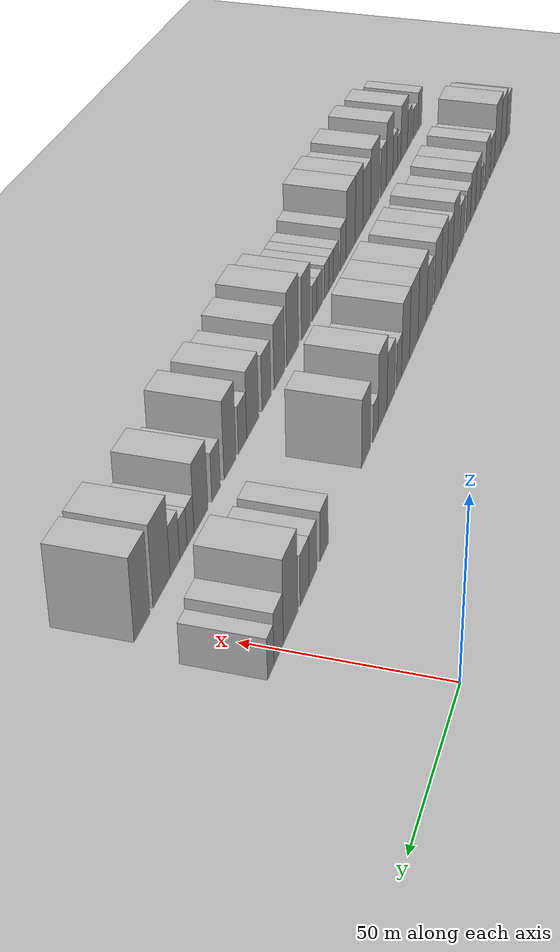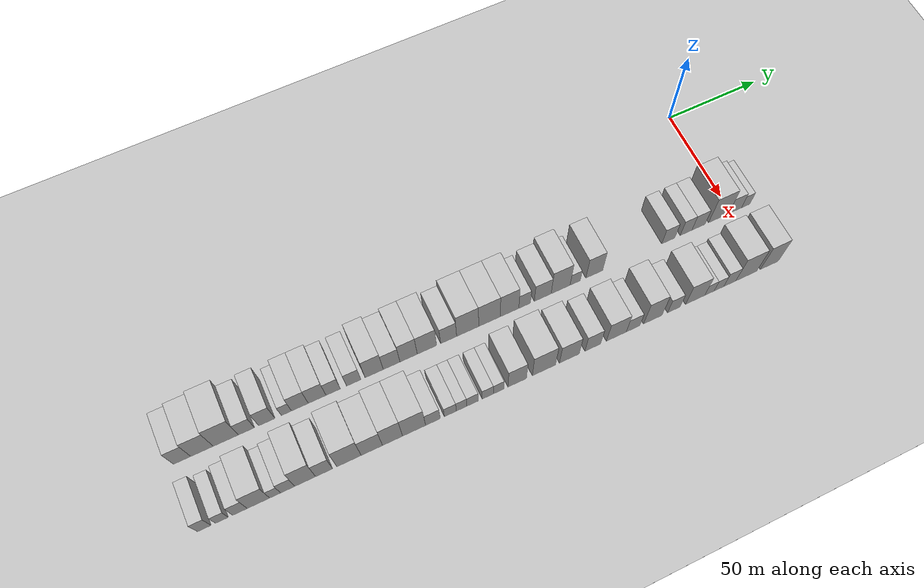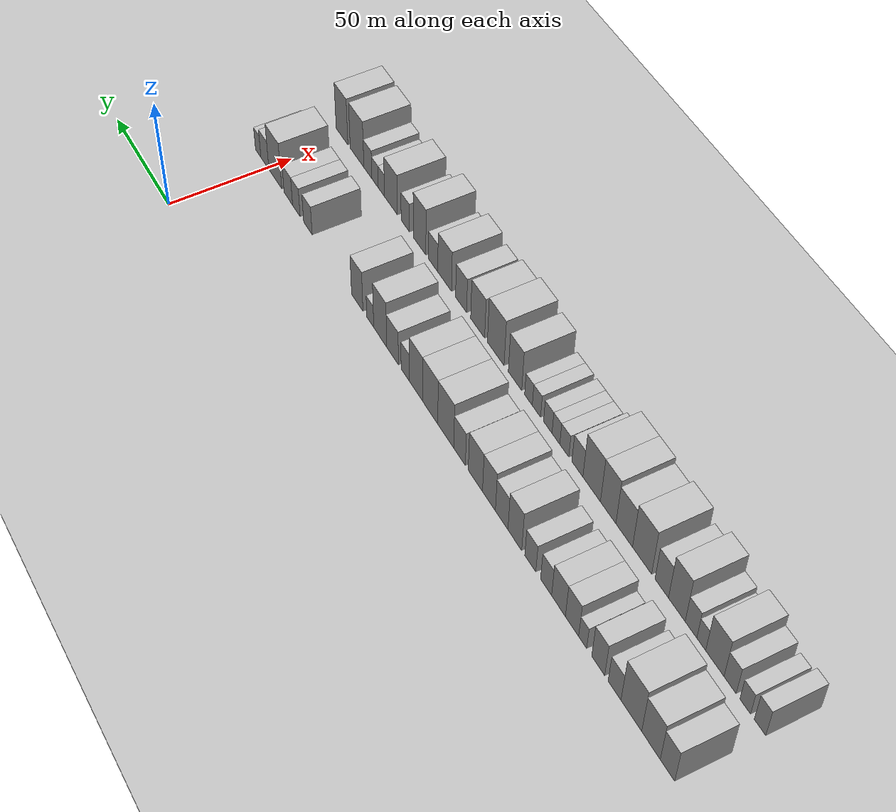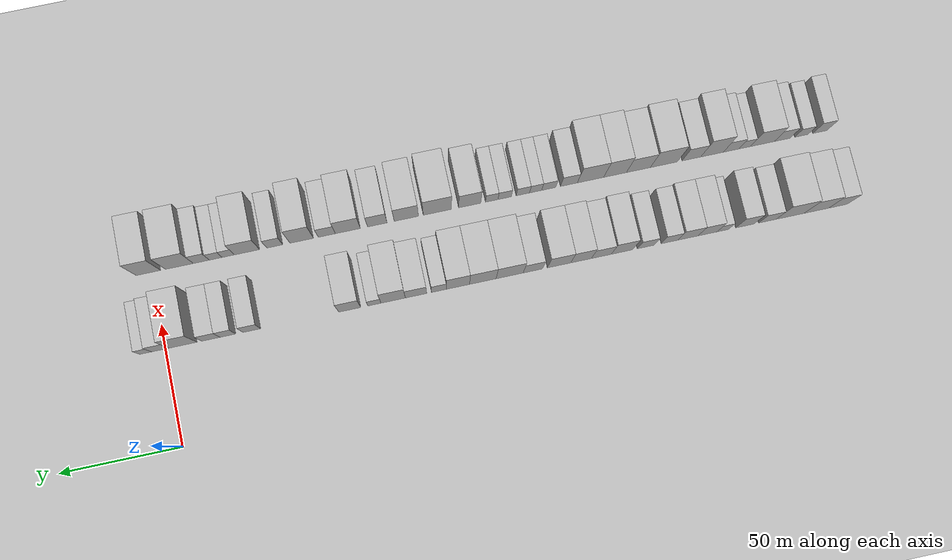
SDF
<sdf version="1.6">
 <world name="default">
  <include><name>ground_plane_1</name><uri>model://HANNAS_ground_plane</uri></include>
  <include>
   <name>ground_plane_2</name>
   <uri>model://HANNAS_ground_plane</uri>
   <pose>100 0 0  0 0 0</pose>
  </include>
  <model name="building_1">
   <static>1</static>
   <pose>50.0000 -280.0364 0 0.000000 0.000000 0.000000</pose>
   <link name="link">
    <pose>0 0 9.00 0 0 0</pose>
    <collision name="collision"><geometry><box><size>20.0000 7.9272 18.0000</size></box></geometry></collision>
    <visual name="visual">
     <cast_shadows>0</cast_shadows>
     <geometry><box><size>20.0000 7.9272 18.0000</size></box></geometry>
     <material>
      <script>
       <uri>model://HANNAS_wall/materials/scripts</uri>
       <uri>model://HANNAS_wall/materials/textures</uri>
       <name>vrc/HANNAS_wall</name>
      </script>
     </material>
    </visual>
   </link>
  </model>
  <model name="building_2">
   <static>1</static>
   <pose>50.0000 -270.8760 0 0.000000 0.000000 0.000000</pose>
   <link name="link">
    <pose>0 0 10.50 0 0 0</pose>
    <collision name="collision"><geometry><box><size>20.0000 10.3936 21.0000</size></box></geometry></collision>
    <visual name="visual">
     <cast_shadows>0</cast_shadows>
     <geometry><box><size>20.0000 10.3936 21.0000</size></box></geometry>
     <material>
      <script>
       <uri>model://HANNAS_wall/materials/scripts</uri>
       <uri>model://HANNAS_wall/materials/textures</uri>
       <name>vrc/HANNAS_wall</name>
      </script>
     </material>
    </visual>
   </link>
  </model>
  <model name="building_3">
   <static>1</static>
   <pose>50.0000 -259.7815 0 0.000000 0.000000 0.000000</pose>
   <link name="link">
    <pose>0 0 12.00 0 0 0</pose>
    <collision name="collision"><geometry><box><size>20.0000 11.7954 24.0000</size></box></geometry></collision>
    <visual name="visual">
     <cast_shadows>0</cast_shadows>
     <geometry><box><size>20.0000 11.7954 24.0000</size></box></geometry>
     <material>
      <script>
       <uri>model://HANNAS_wall/materials/scripts</uri>
       <uri>model://HANNAS_wall/materials/textures</uri>
       <name>vrc/HANNAS_wall</name>
      </script>
     </material>
    </visual>
   </link>
  </model>
  <model name="building_4">
   <static>1</static>
   <pose>50.0000 -250.1484 0 0.000000 0.000000 0.000000</pose>
   <link name="link">
    <pose>0 0 7.50 0 0 0</pose>
    <collision name="collision"><geometry><box><size>20.0000 7.4707 15.0000</size></box></geometry></collision>
    <visual name="visual">
     <cast_shadows>0</cast_shadows>
     <geometry><box><size>20.0000 7.4707 15.0000</size></box></geometry>
     <material>
      <script>
       <uri>model://HANNAS_wall/materials/scripts</uri>
       <uri>model://HANNAS_wall/materials/textures</uri>
       <name>vrc/HANNAS_wall</name>
      </script>
     </material>
    </visual>
   </link>
  </model>
  <model name="building_5">
   <static>1</static>
   <pose>50.0000 -240.5626 0 0.000000 0.000000 0.000000</pose>
   <link name="link">
    <pose>0 0 9.00 0 0 0</pose>
    <collision name="collision"><geometry><box><size>20.0000 7.7009 18.0000</size></box></geometry></collision>
    <visual name="visual">
     <cast_shadows>0</cast_shadows>
     <geometry><box><size>20.0000 7.7009 18.0000</size></box></geometry>
     <material>
      <script>
       <uri>model://HANNAS_wall/materials/scripts</uri>
       <uri>model://HANNAS_wall/materials/textures</uri>
       <name>vrc/HANNAS_wall</name>
      </script>
     </material>
    </visual>
   </link>
  </model>
  <model name="building_6">
   <static>1</static>
   <pose>50.0000 -231.2862 0 0.000000 0.000000 0.000000</pose>
   <link name="link">
    <pose>0 0 6.00 0 0 0</pose>
    <collision name="collision"><geometry><box><size>20.0000 4.8521 12.0000</size></box></geometry></collision>
    <visual name="visual">
     <cast_shadows>0</cast_shadows>
     <geometry><box><size>20.0000 4.8521 12.0000</size></box></geometry>
     <material>
      <script>
       <uri>model://HANNAS_wall/materials/scripts</uri>
       <uri>model://HANNAS_wall/materials/textures</uri>
       <name>vrc/HANNAS_wall</name>
      </script>
     </material>
    </visual>
   </link>
  </model>
  <model name="building_7">
   <static>1</static>
   <pose>50.0000 -224.8250 0 0.000000 0.000000 0.000000</pose>
   <link name="link">
    <pose>0 0 9.00 0 0 0</pose>
    <collision name="collision"><geometry><box><size>20.0000 8.0703 18.0000</size></box></geometry></collision>
    <visual name="visual">
     <cast_shadows>0</cast_shadows>
     <geometry><box><size>20.0000 8.0703 18.0000</size></box></geometry>
     <material>
      <script>
       <uri>model://HANNAS_wall/materials/scripts</uri>
       <uri>model://HANNAS_wall/materials/textures</uri>
       <name>vrc/HANNAS_wall</name>
      </script>
     </material>
    </visual>
   </link>
  </model>
  <model name="building_8">
   <static>1</static>
   <pose>50.0000 -216.5220 0 0.000000 0.000000 0.000000</pose>
   <link name="link">
    <pose>0 0 9.00 0 0 0</pose>
    <collision name="collision"><geometry><box><size>20.0000 8.5356 18.0000</size></box></geometry></collision>
    <visual name="visual">
     <cast_shadows>0</cast_shadows>
     <geometry><box><size>20.0000 8.5356 18.0000</size></box></geometry>
     <material>
      <script>
       <uri>model://HANNAS_wall/materials/scripts</uri>
       <uri>model://HANNAS_wall/materials/textures</uri>
       <name>vrc/HANNAS_wall</name>
      </script>
     </material>
    </visual>
   </link>
  </model>
  <model name="building_9">
   <static>1</static>
   <pose>50.0000 -208.7909 0 0.000000 0.000000 0.000000</pose>
   <link name="link">
    <pose>0 0 7.50 0 0 0</pose>
    <collision name="collision"><geometry><box><size>20.0000 6.9267 15.0000</size></box></geometry></collision>
    <visual name="visual">
     <cast_shadows>0</cast_shadows>
     <geometry><box><size>20.0000 6.9267 15.0000</size></box></geometry>
     <material>
      <script>
       <uri>model://HANNAS_wall/materials/scripts</uri>
       <uri>model://HANNAS_wall/materials/textures</uri>
       <name>vrc/HANNAS_wall</name>
      </script>
     </material>
    </visual>
   </link>
  </model>
  <model name="building_10">
   <static>1</static>
   <pose>50.0000 -198.7944 0 0.000000 0.000000 0.000000</pose>
   <link name="link">
    <pose>0 0 7.50 0 0 0</pose>
    <collision name="collision"><geometry><box><size>20.0000 7.0663 15.0000</size></box></geometry></collision>
    <visual name="visual">
     <cast_shadows>0</cast_shadows>
     <geometry><box><size>20.0000 7.0663 15.0000</size></box></geometry>
     <material>
      <script>
       <uri>model://HANNAS_wall/materials/scripts</uri>
       <uri>model://HANNAS_wall/materials/textures</uri>
       <name>vrc/HANNAS_wall</name>
      </script>
     </material>
    </visual>
   </link>
  </model>
  <model name="building_11">
   <static>1</static>
   <pose>50.0000 -188.7851 0 0.000000 0.000000 0.000000</pose>
   <link name="link">
    <pose>0 0 10.50 0 0 0</pose>
    <collision name="collision"><geometry><box><size>20.0000 8.9523 21.0000</size></box></geometry></collision>
    <visual name="visual">
     <cast_shadows>0</cast_shadows>
     <geometry><box><size>20.0000 8.9523 21.0000</size></box></geometry>
     <material>
      <script>
       <uri>model://HANNAS_wall/materials/scripts</uri>
       <uri>model://HANNAS_wall/materials/textures</uri>
       <name>vrc/HANNAS_wall</name>
      </script>
     </material>
    </visual>
   </link>
  </model>
  <model name="building_12">
   <static>1</static>
   <pose>50.0000 -180.1561 0 0.000000 0.000000 0.000000</pose>
   <link name="link">
    <pose>0 0 9.00 0 0 0</pose>
    <collision name="collision"><geometry><box><size>20.0000 8.3055 18.0000</size></box></geometry></collision>
    <visual name="visual">
     <cast_shadows>0</cast_shadows>
     <geometry><box><size>20.0000 8.3055 18.0000</size></box></geometry>
     <material>
      <script>
       <uri>model://HANNAS_wall/materials/scripts</uri>
       <uri>model://HANNAS_wall/materials/textures</uri>
       <name>vrc/HANNAS_wall</name>
      </script>
     </material>
    </visual>
   </link>
  </model>
  <model name="building_13">
   <static>1</static>
   <pose>50.0000 -171.6764 0 0.000000 0.000000 0.000000</pose>
   <link name="link">
    <pose>0 0 10.50 0 0 0</pose>
    <collision name="collision"><geometry><box><size>20.0000 8.6539 21.0000</size></box></geometry></collision>
    <visual name="visual">
     <cast_shadows>0</cast_shadows>
     <geometry><box><size>20.0000 8.6539 21.0000</size></box></geometry>
     <material>
      <script>
       <uri>model://HANNAS_wall/materials/scripts</uri>
       <uri>model://HANNAS_wall/materials/textures</uri>
       <name>vrc/HANNAS_wall</name>
      </script>
     </material>
    </visual>
   </link>
  </model>
  <model name="building_14">
   <static>1</static>
   <pose>50.0000 -162.4909 0 0.000000 0.000000 0.000000</pose>
   <link name="link">
    <pose>0 0 10.50 0 0 0</pose>
    <collision name="collision"><geometry><box><size>20.0000 9.7172 21.0000</size></box></geometry></collision>
    <visual name="visual">
     <cast_shadows>0</cast_shadows>
     <geometry><box><size>20.0000 9.7172 21.0000</size></box></geometry>
     <material>
      <script>
       <uri>model://HANNAS_wall/materials/scripts</uri>
       <uri>model://HANNAS_wall/materials/textures</uri>
       <name>vrc/HANNAS_wall</name>
      </script>
     </material>
    </visual>
   </link>
  </model>
  <model name="building_15">
   <static>1</static>
   <pose>50.0000 -151.5765 0 0.000000 0.000000 0.000000</pose>
   <link name="link">
    <pose>0 0 9.00 0 0 0</pose>
    <collision name="collision"><geometry><box><size>20.0000 8.1117 18.0000</size></box></geometry></collision>
    <visual name="visual">
     <cast_shadows>0</cast_shadows>
     <geometry><box><size>20.0000 8.1117 18.0000</size></box></geometry>
     <material>
      <script>
       <uri>model://HANNAS_wall/materials/scripts</uri>
       <uri>model://HANNAS_wall/materials/textures</uri>
       <name>vrc/HANNAS_wall</name>
      </script>
     </material>
    </visual>
   </link>
  </model>
  <model name="building_16">
   <static>1</static>
   <pose>50.0000 -141.8752 0 0.000000 0.000000 0.000000</pose>
   <link name="link">
    <pose>0 0 12.00 0 0 0</pose>
    <collision name="collision"><geometry><box><size>20.0000 11.2909 24.0000</size></box></geometry></collision>
    <visual name="visual">
     <cast_shadows>0</cast_shadows>
     <geometry><box><size>20.0000 11.2909 24.0000</size></box></geometry>
     <material>
      <script>
       <uri>model://HANNAS_wall/materials/scripts</uri>
       <uri>model://HANNAS_wall/materials/textures</uri>
       <name>vrc/HANNAS_wall</name>
      </script>
     </material>
    </visual>
   </link>
  </model>
  <model name="building_17">
   <static>1</static>
   <pose>50.0000 -130.7144 0 0.000000 0.000000 0.000000</pose>
   <link name="link">
    <pose>0 0 12.00 0 0 0</pose>
    <collision name="collision"><geometry><box><size>20.0000 11.0307 24.0000</size></box></geometry></collision>
    <visual name="visual">
     <cast_shadows>0</cast_shadows>
     <geometry><box><size>20.0000 11.0307 24.0000</size></box></geometry>
     <material>
      <script>
       <uri>model://HANNAS_wall/materials/scripts</uri>
       <uri>model://HANNAS_wall/materials/textures</uri>
       <name>vrc/HANNAS_wall</name>
      </script>
     </material>
    </visual>
   </link>
  </model>
  <model name="building_18">
   <static>1</static>
   <pose>50.0000 -120.3880 0 0.000000 0.000000 0.000000</pose>
   <link name="link">
    <pose>0 0 12.00 0 0 0</pose>
    <collision name="collision"><geometry><box><size>20.0000 9.6219 24.0000</size></box></geometry></collision>
    <visual name="visual">
     <cast_shadows>0</cast_shadows>
     <geometry><box><size>20.0000 9.6219 24.0000</size></box></geometry>
     <material>
      <script>
       <uri>model://HANNAS_wall/materials/scripts</uri>
       <uri>model://HANNAS_wall/materials/textures</uri>
       <name>vrc/HANNAS_wall</name>
      </script>
     </material>
    </visual>
   </link>
  </model>
  <model name="building_19">
   <static>1</static>
   <pose>50.0000 -112.5181 0 0.000000 0.000000 0.000000</pose>
   <link name="link">
    <pose>0 0 7.50 0 0 0</pose>
    <collision name="collision"><geometry><box><size>20.0000 6.1178 15.0000</size></box></geometry></collision>
    <visual name="visual">
     <cast_shadows>0</cast_shadows>
     <geometry><box><size>20.0000 6.1178 15.0000</size></box></geometry>
     <material>
      <script>
       <uri>model://HANNAS_wall/materials/scripts</uri>
       <uri>model://HANNAS_wall/materials/textures</uri>
       <name>vrc/HANNAS_wall</name>
      </script>
     </material>
    </visual>
   </link>
  </model>
  <model name="building_20">
   <static>1</static>
   <pose>50.0000 -103.0494 0 0.000000 0.000000 0.000000</pose>
   <link name="link">
    <pose>0 0 9.00 0 0 0</pose>
    <collision name="collision"><geometry><box><size>20.0000 8.8197 18.0000</size></box></geometry></collision>
    <visual name="visual">
     <cast_shadows>0</cast_shadows>
     <geometry><box><size>20.0000 8.8197 18.0000</size></box></geometry>
     <material>
      <script>
       <uri>model://HANNAS_wall/materials/scripts</uri>
       <uri>model://HANNAS_wall/materials/textures</uri>
       <name>vrc/HANNAS_wall</name>
      </script>
     </material>
    </visual>
   </link>
  </model>
  <model name="building_21">
   <static>1</static>
   <pose>50.0000 -93.6185 0 0.000000 0.000000 0.000000</pose>
   <link name="link">
    <pose>0 0 12.00 0 0 0</pose>
    <collision name="collision"><geometry><box><size>20.0000 10.0421 24.0000</size></box></geometry></collision>
    <visual name="visual">
     <cast_shadows>0</cast_shadows>
     <geometry><box><size>20.0000 10.0421 24.0000</size></box></geometry>
     <material>
      <script>
       <uri>model://HANNAS_wall/materials/scripts</uri>
       <uri>model://HANNAS_wall/materials/textures</uri>
       <name>vrc/HANNAS_wall</name>
      </script>
     </material>
    </visual>
   </link>
  </model>
  <model name="building_22">
   <static>1</static>
   <pose>50.0000 -85.8899 0 0.000000 0.000000 0.000000</pose>
   <link name="link">
    <pose>0 0 6.00 0 0 0</pose>
    <collision name="collision"><geometry><box><size>20.0000 5.4150 12.0000</size></box></geometry></collision>
    <visual name="visual">
     <cast_shadows>0</cast_shadows>
     <geometry><box><size>20.0000 5.4150 12.0000</size></box></geometry>
     <material>
      <script>
       <uri>model://HANNAS_wall/materials/scripts</uri>
       <uri>model://HANNAS_wall/materials/textures</uri>
       <name>vrc/HANNAS_wall</name>
      </script>
     </material>
    </visual>
   </link>
  </model>
  <model name="building_23">
   <static>1</static>
   <pose>50.0000 -75.6865 0 0.000000 0.000000 0.000000</pose>
   <link name="link">
    <pose>0 0 10.50 0 0 0</pose>
    <collision name="collision"><geometry><box><size>20.0000 8.9918 21.0000</size></box></geometry></collision>
    <visual name="visual">
     <cast_shadows>0</cast_shadows>
     <geometry><box><size>20.0000 8.9918 21.0000</size></box></geometry>
     <material>
      <script>
       <uri>model://HANNAS_wall/materials/scripts</uri>
       <uri>model://HANNAS_wall/materials/textures</uri>
       <name>vrc/HANNAS_wall</name>
      </script>
     </material>
    </visual>
   </link>
  </model>
  <model name="building_24">
   <static>1</static>
   <pose>50.0000 -35.3655 0 0.000000 0.000000 0.000000</pose>
   <link name="link">
    <pose>0 0 7.50 0 0 0</pose>
    <collision name="collision"><geometry><box><size>20.0000 7.2167 15.0000</size></box></geometry></collision>
    <visual name="visual">
     <cast_shadows>0</cast_shadows>
     <geometry><box><size>20.0000 7.2167 15.0000</size></box></geometry>
     <material>
      <script>
       <uri>model://HANNAS_wall/materials/scripts</uri>
       <uri>model://HANNAS_wall/materials/textures</uri>
       <name>vrc/HANNAS_wall</name>
      </script>
     </material>
    </visual>
   </link>
  </model>
  <model name="building_25">
   <static>1</static>
   <pose>50.0000 -25.5118 0 0.000000 0.000000 0.000000</pose>
   <link name="link">
    <pose>0 0 7.50 0 0 0</pose>
    <collision name="collision"><geometry><box><size>20.0000 6.4908 15.0000</size></box></geometry></collision>
    <visual name="visual">
     <cast_shadows>0</cast_shadows>
     <geometry><box><size>20.0000 6.4908 15.0000</size></box></geometry>
     <material>
      <script>
       <uri>model://HANNAS_wall/materials/scripts</uri>
       <uri>model://HANNAS_wall/materials/textures</uri>
       <name>vrc/HANNAS_wall</name>
      </script>
     </material>
    </visual>
   </link>
  </model>
  <model name="building_26">
   <static>1</static>
   <pose>50.0000 -18.5920 0 0.000000 0.000000 0.000000</pose>
   <link name="link">
    <pose>0 0 7.50 0 0 0</pose>
    <collision name="collision"><geometry><box><size>20.0000 7.3487 15.0000</size></box></geometry></collision>
    <visual name="visual">
     <cast_shadows>0</cast_shadows>
     <geometry><box><size>20.0000 7.3487 15.0000</size></box></geometry>
     <material>
      <script>
       <uri>model://HANNAS_wall/materials/scripts</uri>
       <uri>model://HANNAS_wall/materials/textures</uri>
       <name>vrc/HANNAS_wall</name>
      </script>
     </material>
    </visual>
   </link>
  </model>
  <model name="building_27">
   <static>1</static>
   <pose>50.0000 -7.2226 0 0.000000 0.000000 0.000000</pose>
   <link name="link">
    <pose>0 0 12.00 0 0 0</pose>
    <collision name="collision"><geometry><box><size>20.0000 11.3902 24.0000</size></box></geometry></collision>
    <visual name="visual">
     <cast_shadows>0</cast_shadows>
     <geometry><box><size>20.0000 11.3902 24.0000</size></box></geometry>
     <material>
      <script>
       <uri>model://HANNAS_wall/materials/scripts</uri>
       <uri>model://HANNAS_wall/materials/textures</uri>
       <name>vrc/HANNAS_wall</name>
      </script>
     </material>
    </visual>
   </link>
  </model>
  <model name="building_28">
   <static>1</static>
   <pose>50.0000 2.0500 0 0.000000 0.000000 0.000000</pose>
   <link name="link">
    <pose>0 0 7.50 0 0 0</pose>
    <collision name="collision"><geometry><box><size>20.0000 7.1551 15.0000</size></box></geometry></collision>
    <visual name="visual">
     <cast_shadows>0</cast_shadows>
     <geometry><box><size>20.0000 7.1551 15.0000</size></box></geometry>
     <material>
      <script>
       <uri>model://HANNAS_wall/materials/scripts</uri>
       <uri>model://HANNAS_wall/materials/textures</uri>
       <name>vrc/HANNAS_wall</name>
      </script>
     </material>
    </visual>
   </link>
  </model>
  <model name="building_29">
   <static>1</static>
   <pose>50.0000 8.0518 0 0.000000 0.000000 0.000000</pose>
   <link name="link">
    <pose>0 0 6.00 0 0 0</pose>
    <collision name="collision"><geometry><box><size>20.0000 4.8486 12.0000</size></box></geometry></collision>
    <visual name="visual">
     <cast_shadows>0</cast_shadows>
     <geometry><box><size>20.0000 4.8486 12.0000</size></box></geometry>
     <material>
      <script>
       <uri>model://HANNAS_wall/materials/scripts</uri>
       <uri>model://HANNAS_wall/materials/textures</uri>
       <name>vrc/HANNAS_wall</name>
      </script>
     </material>
    </visual>
   </link>
  </model>
  <model name="building_61">
   <static>1</static>
   <pose>82.0000 -280.9571 0 0.000000 0.000000 0.000000</pose>
   <link name="link">
    <pose>0 0 7.50 0 0 0</pose>
    <collision name="collision"><geometry><box><size>20.0000 6.0858 15.0000</size></box></geometry></collision>
    <visual name="visual">
     <cast_shadows>0</cast_shadows>
     <geometry><box><size>20.0000 6.0858 15.0000</size></box></geometry>
     <material>
      <script>
       <uri>model://HANNAS_wall/materials/scripts</uri>
       <uri>model://HANNAS_wall/materials/textures</uri>
       <name>vrc/HANNAS_wall</name>
      </script>
     </material>
    </visual>
   </link>
  </model>
  <model name="building_62">
   <static>1</static>
   <pose>82.0000 -273.0345 0 0.000000 0.000000 0.000000</pose>
   <link name="link">
    <pose>0 0 6.00 0 0 0</pose>
    <collision name="collision"><geometry><box><size>20.0000 5.7595 12.0000</size></box></geometry></collision>
    <visual name="visual">
     <cast_shadows>0</cast_shadows>
     <geometry><box><size>20.0000 5.7595 12.0000</size></box></geometry>
     <material>
      <script>
       <uri>model://HANNAS_wall/materials/scripts</uri>
       <uri>model://HANNAS_wall/materials/textures</uri>
       <name>vrc/HANNAS_wall</name>
      </script>
     </material>
    </visual>
   </link>
  </model>
  <model name="building_63">
   <static>1</static>
   <pose>82.0000 -264.8353 0 0.000000 0.000000 0.000000</pose>
   <link name="link">
    <pose>0 0 7.50 0 0 0</pose>
    <collision name="collision"><geometry><box><size>20.0000 6.6389 15.0000</size></box></geometry></collision>
    <visual name="visual">
     <cast_shadows>0</cast_shadows>
     <geometry><box><size>20.0000 6.6389 15.0000</size></box></geometry>
     <material>
      <script>
       <uri>model://HANNAS_wall/materials/scripts</uri>
       <uri>model://HANNAS_wall/materials/textures</uri>
       <name>vrc/HANNAS_wall</name>
      </script>
     </material>
    </visual>
   </link>
  </model>
  <model name="building_64">
   <static>1</static>
   <pose>82.0000 -256.4144 0 0.000000 0.000000 0.000000</pose>
   <link name="link">
    <pose>0 0 10.50 0 0 0</pose>
    <collision name="collision"><geometry><box><size>20.0000 10.2030 21.0000</size></box></geometry></collision>
    <visual name="visual">
     <cast_shadows>0</cast_shadows>
     <geometry><box><size>20.0000 10.2030 21.0000</size></box></geometry>
     <material>
      <script>
       <uri>model://HANNAS_wall/materials/scripts</uri>
       <uri>model://HANNAS_wall/materials/textures</uri>
       <name>vrc/HANNAS_wall</name>
      </script>
     </material>
    </visual>
   </link>
  </model>
  <model name="building_65">
   <static>1</static>
   <pose>82.0000 -248.8162 0 0.000000 0.000000 0.000000</pose>
   <link name="link">
    <pose>0 0 6.00 0 0 0</pose>
    <collision name="collision"><geometry><box><size>20.0000 4.9935 12.0000</size></box></geometry></collision>
    <visual name="visual">
     <cast_shadows>0</cast_shadows>
     <geometry><box><size>20.0000 4.9935 12.0000</size></box></geometry>
     <material>
      <script>
       <uri>model://HANNAS_wall/materials/scripts</uri>
       <uri>model://HANNAS_wall/materials/textures</uri>
       <name>vrc/HANNAS_wall</name>
      </script>
     </material>
    </visual>
   </link>
  </model>
  <model name="building_66">
   <static>1</static>
   <pose>82.0000 -243.0043 0 0.000000 0.000000 0.000000</pose>
   <link name="link">
    <pose>0 0 7.50 0 0 0</pose>
    <collision name="collision"><geometry><box><size>20.0000 6.6301 15.0000</size></box></geometry></collision>
    <visual name="visual">
     <cast_shadows>0</cast_shadows>
     <geometry><box><size>20.0000 6.6301 15.0000</size></box></geometry>
     <material>
      <script>
       <uri>model://HANNAS_wall/materials/scripts</uri>
       <uri>model://HANNAS_wall/materials/textures</uri>
       <name>vrc/HANNAS_wall</name>
      </script>
     </material>
    </visual>
   </link>
  </model>
  <model name="building_67">
   <static>1</static>
   <pose>82.0000 -234.8484 0 0.000000 0.000000 0.000000</pose>
   <link name="link">
    <pose>0 0 12.00 0 0 0</pose>
    <collision name="collision"><geometry><box><size>20.0000 9.6818 24.0000</size></box></geometry></collision>
    <visual name="visual">
     <cast_shadows>0</cast_shadows>
     <geometry><box><size>20.0000 9.6818 24.0000</size></box></geometry>
     <material>
      <script>
       <uri>model://HANNAS_wall/materials/scripts</uri>
       <uri>model://HANNAS_wall/materials/textures</uri>
       <name>vrc/HANNAS_wall</name>
      </script>
     </material>
    </visual>
   </link>
  </model>
  <model name="building_68">
   <static>1</static>
   <pose>82.0000 -226.0457 0 0.000000 0.000000 0.000000</pose>
   <link name="link">
    <pose>0 0 9.00 0 0 0</pose>
    <collision name="collision"><geometry><box><size>20.0000 7.9235 18.0000</size></box></geometry></collision>
    <visual name="visual">
     <cast_shadows>0</cast_shadows>
     <geometry><box><size>20.0000 7.9235 18.0000</size></box></geometry>
     <material>
      <script>
       <uri>model://HANNAS_wall/materials/scripts</uri>
       <uri>model://HANNAS_wall/materials/textures</uri>
       <name>vrc/HANNAS_wall</name>
      </script>
     </material>
    </visual>
   </link>
  </model>
  <model name="building_69">
   <static>1</static>
   <pose>82.0000 -214.3374 0 0.000000 0.000000 0.000000</pose>
   <link name="link">
    <pose>0 0 12.00 0 0 0</pose>
    <collision name="collision"><geometry><box><size>20.0000 11.4932 24.0000</size></box></geometry></collision>
    <visual name="visual">
     <cast_shadows>0</cast_shadows>
     <geometry><box><size>20.0000 11.4932 24.0000</size></box></geometry>
     <material>
      <script>
       <uri>model://HANNAS_wall/materials/scripts</uri>
       <uri>model://HANNAS_wall/materials/textures</uri>
       <name>vrc/HANNAS_wall</name>
      </script>
     </material>
    </visual>
   </link>
  </model>
  <model name="building_70">
   <static>1</static>
   <pose>82.0000 -203.4918 0 0.000000 0.000000 0.000000</pose>
   <link name="link">
    <pose>0 0 10.50 0 0 0</pose>
    <collision name="collision"><geometry><box><size>20.0000 10.1980 21.0000</size></box></geometry></collision>
    <visual name="visual">
     <cast_shadows>0</cast_shadows>
     <geometry><box><size>20.0000 10.1980 21.0000</size></box></geometry>
     <material>
      <script>
       <uri>model://HANNAS_wall/materials/scripts</uri>
       <uri>model://HANNAS_wall/materials/textures</uri>
       <name>vrc/HANNAS_wall</name>
      </script>
     </material>
    </visual>
   </link>
  </model>
  <model name="building_71">
   <static>1</static>
   <pose>82.0000 -193.5657 0 0.000000 0.000000 0.000000</pose>
   <link name="link">
    <pose>0 0 12.00 0 0 0</pose>
    <collision name="collision"><geometry><box><size>20.0000 9.6541 24.0000</size></box></geometry></collision>
    <visual name="visual">
     <cast_shadows>0</cast_shadows>
     <geometry><box><size>20.0000 9.6541 24.0000</size></box></geometry>
     <material>
      <script>
       <uri>model://HANNAS_wall/materials/scripts</uri>
       <uri>model://HANNAS_wall/materials/textures</uri>
       <name>vrc/HANNAS_wall</name>
      </script>
     </material>
    </visual>
   </link>
  </model>
  <model name="building_72">
   <static>1</static>
   <pose>82.0000 -183.1606 0 0.000000 0.000000 0.000000</pose>
   <link name="link">
    <pose>0 0 12.00 0 0 0</pose>
    <collision name="collision"><geometry><box><size>20.0000 11.1561 24.0000</size></box></geometry></collision>
    <visual name="visual">
     <cast_shadows>0</cast_shadows>
     <geometry><box><size>20.0000 11.1561 24.0000</size></box></geometry>
     <material>
      <script>
       <uri>model://HANNAS_wall/materials/scripts</uri>
       <uri>model://HANNAS_wall/materials/textures</uri>
       <name>vrc/HANNAS_wall</name>
      </script>
     </material>
    </visual>
   </link>
  </model>
  <model name="building_73">
   <static>1</static>
   <pose>82.0000 -174.0141 0 0.000000 0.000000 0.000000</pose>
   <link name="link">
    <pose>0 0 7.50 0 0 0</pose>
    <collision name="collision"><geometry><box><size>20.0000 7.1369 15.0000</size></box></geometry></collision>
    <visual name="visual">
     <cast_shadows>0</cast_shadows>
     <geometry><box><size>20.0000 7.1369 15.0000</size></box></geometry>
     <material>
      <script>
       <uri>model://HANNAS_wall/materials/scripts</uri>
       <uri>model://HANNAS_wall/materials/textures</uri>
       <name>vrc/HANNAS_wall</name>
      </script>
     </material>
    </visual>
   </link>
  </model>
  <model name="building_74">
   <static>1</static>
   <pose>82.0000 -165.4908 0 0.000000 0.000000 0.000000</pose>
   <link name="link">
    <pose>0 0 6.00 0 0 0</pose>
    <collision name="collision"><geometry><box><size>20.0000 5.9097 12.0000</size></box></geometry></collision>
    <visual name="visual">
     <cast_shadows>0</cast_shadows>
     <geometry><box><size>20.0000 5.9097 12.0000</size></box></geometry>
     <material>
      <script>
       <uri>model://HANNAS_wall/materials/scripts</uri>
       <uri>model://HANNAS_wall/materials/textures</uri>
       <name>vrc/HANNAS_wall</name>
      </script>
     </material>
    </visual>
   </link>
  </model>
  <model name="building_75">
   <static>1</static>
   <pose>82.0000 -159.9656 0 0.000000 0.000000 0.000000</pose>
   <link name="link">
    <pose>0 0 6.00 0 0 0</pose>
    <collision name="collision"><geometry><box><size>20.0000 5.1408 12.0000</size></box></geometry></collision>
    <visual name="visual">
     <cast_shadows>0</cast_shadows>
     <geometry><box><size>20.0000 5.1408 12.0000</size></box></geometry>
     <material>
      <script>
       <uri>model://HANNAS_wall/materials/scripts</uri>
       <uri>model://HANNAS_wall/materials/textures</uri>
       <name>vrc/HANNAS_wall</name>
      </script>
     </material>
    </visual>
   </link>
  </model>
  <model name="building_76">
   <static>1</static>
   <pose>82.0000 -154.5769 0 0.000000 0.000000 0.000000</pose>
   <link name="link">
    <pose>0 0 6.00 0 0 0</pose>
    <collision name="collision"><geometry><box><size>20.0000 5.6365 12.0000</size></box></geometry></collision>
    <visual name="visual">
     <cast_shadows>0</cast_shadows>
     <geometry><box><size>20.0000 5.6365 12.0000</size></box></geometry>
     <material>
      <script>
       <uri>model://HANNAS_wall/materials/scripts</uri>
       <uri>model://HANNAS_wall/materials/textures</uri>
       <name>vrc/HANNAS_wall</name>
      </script>
     </material>
    </visual>
   </link>
  </model>
  <model name="building_77">
   <static>1</static>
   <pose>82.0000 -146.9586 0 0.000000 0.000000 0.000000</pose>
   <link name="link">
    <pose>0 0 6.00 0 0 0</pose>
    <collision name="collision"><geometry><box><size>20.0000 5.6003 12.0000</size></box></geometry></collision>
    <visual name="visual">
     <cast_shadows>0</cast_shadows>
     <geometry><box><size>20.0000 5.6003 12.0000</size></box></geometry>
     <material>
      <script>
       <uri>model://HANNAS_wall/materials/scripts</uri>
       <uri>model://HANNAS_wall/materials/textures</uri>
       <name>vrc/HANNAS_wall</name>
      </script>
     </material>
    </visual>
   </link>
  </model>
  <model name="building_78">
   <static>1</static>
   <pose>82.0000 -141.5234 0 0.000000 0.000000 0.000000</pose>
   <link name="link">
    <pose>0 0 6.00 0 0 0</pose>
    <collision name="collision"><geometry><box><size>20.0000 5.2701 12.0000</size></box></geometry></collision>
    <visual name="visual">
     <cast_shadows>0</cast_shadows>
     <geometry><box><size>20.0000 5.2701 12.0000</size></box></geometry>
     <material>
      <script>
       <uri>model://HANNAS_wall/materials/scripts</uri>
       <uri>model://HANNAS_wall/materials/textures</uri>
       <name>vrc/HANNAS_wall</name>
      </script>
     </material>
    </visual>
   </link>
  </model>
  <model name="building_79">
   <static>1</static>
   <pose>82.0000 -132.2449 0 0.000000 0.000000 0.000000</pose>
   <link name="link">
    <pose>0 0 10.50 0 0 0</pose>
    <collision name="collision"><geometry><box><size>20.0000 9.2868 21.0000</size></box></geometry></collision>
    <visual name="visual">
     <cast_shadows>0</cast_shadows>
     <geometry><box><size>20.0000 9.2868 21.0000</size></box></geometry>
     <material>
      <script>
       <uri>model://HANNAS_wall/materials/scripts</uri>
       <uri>model://HANNAS_wall/materials/textures</uri>
       <name>vrc/HANNAS_wall</name>
      </script>
     </material>
    </visual>
   </link>
  </model>
  <model name="building_80">
   <static>1</static>
   <pose>82.0000 -118.6875 0 0.000000 0.000000 0.000000</pose>
   <link name="link">
    <pose>0 0 12.00 0 0 0</pose>
    <collision name="collision"><geometry><box><size>20.0000 11.8279 24.0000</size></box></geometry></collision>
    <visual name="visual">
     <cast_shadows>0</cast_shadows>
     <geometry><box><size>20.0000 11.8279 24.0000</size></box></geometry>
     <material>
      <script>
       <uri>model://HANNAS_wall/materials/scripts</uri>
       <uri>model://HANNAS_wall/materials/textures</uri>
       <name>vrc/HANNAS_wall</name>
      </script>
     </material>
    </visual>
   </link>
  </model>
  <model name="building_81">
   <static>1</static>
   <pose>82.0000 -105.6995 0 0.000000 0.000000 0.000000</pose>
   <link name="link">
    <pose>0 0 10.50 0 0 0</pose>
    <collision name="collision"><geometry><box><size>20.0000 10.1482 21.0000</size></box></geometry></collision>
    <visual name="visual">
     <cast_shadows>0</cast_shadows>
     <geometry><box><size>20.0000 10.1482 21.0000</size></box></geometry>
     <material>
      <script>
       <uri>model://HANNAS_wall/materials/scripts</uri>
       <uri>model://HANNAS_wall/materials/textures</uri>
       <name>vrc/HANNAS_wall</name>
      </script>
     </material>
    </visual>
   </link>
  </model>
  <model name="building_82">
   <static>1</static>
   <pose>82.0000 -93.5496 0 0.000000 0.000000 0.000000</pose>
   <link name="link">
    <pose>0 0 9.00 0 0 0</pose>
    <collision name="collision"><geometry><box><size>20.0000 8.1516 18.0000</size></box></geometry></collision>
    <visual name="visual">
     <cast_shadows>0</cast_shadows>
     <geometry><box><size>20.0000 8.1516 18.0000</size></box></geometry>
     <material>
      <script>
       <uri>model://HANNAS_wall/materials/scripts</uri>
       <uri>model://HANNAS_wall/materials/textures</uri>
       <name>vrc/HANNAS_wall</name>
      </script>
     </material>
    </visual>
   </link>
  </model>
  <model name="building_83">
   <static>1</static>
   <pose>82.0000 -81.2690 0 0.000000 0.000000 0.000000</pose>
   <link name="link">
    <pose>0 0 10.50 0 0 0</pose>
    <collision name="collision"><geometry><box><size>20.0000 10.4096 21.0000</size></box></geometry></collision>
    <visual name="visual">
     <cast_shadows>0</cast_shadows>
     <geometry><box><size>20.0000 10.4096 21.0000</size></box></geometry>
     <material>
      <script>
       <uri>model://HANNAS_wall/materials/scripts</uri>
       <uri>model://HANNAS_wall/materials/textures</uri>
       <name>vrc/HANNAS_wall</name>
      </script>
     </material>
    </visual>
   </link>
  </model>
  <model name="building_84">
   <static>1</static>
   <pose>82.0000 -72.4953 0 0.000000 0.000000 0.000000</pose>
   <link name="link">
    <pose>0 0 7.50 0 0 0</pose>
    <collision name="collision"><geometry><box><size>20.0000 7.1378 15.0000</size></box></geometry></collision>
    <visual name="visual">
     <cast_shadows>0</cast_shadows>
     <geometry><box><size>20.0000 7.1378 15.0000</size></box></geometry>
     <material>
      <script>
       <uri>model://HANNAS_wall/materials/scripts</uri>
       <uri>model://HANNAS_wall/materials/textures</uri>
       <name>vrc/HANNAS_wall</name>
      </script>
     </material>
    </visual>
   </link>
  </model>
  <model name="building_85">
   <static>1</static>
   <pose>82.0000 -62.0333 0 0.000000 0.000000 0.000000</pose>
   <link name="link">
    <pose>0 0 12.00 0 0 0</pose>
    <collision name="collision"><geometry><box><size>20.0000 9.7862 24.0000</size></box></geometry></collision>
    <visual name="visual">
     <cast_shadows>0</cast_shadows>
     <geometry><box><size>20.0000 9.7862 24.0000</size></box></geometry>
     <material>
      <script>
       <uri>model://HANNAS_wall/materials/scripts</uri>
       <uri>model://HANNAS_wall/materials/textures</uri>
       <name>vrc/HANNAS_wall</name>
      </script>
     </material>
    </visual>
   </link>
  </model>
  <model name="building_86">
   <static>1</static>
   <pose>82.0000 -50.8289 0 0.000000 0.000000 0.000000</pose>
   <link name="link">
    <pose>0 0 7.50 0 0 0</pose>
    <collision name="collision"><geometry><box><size>20.0000 6.6227 15.0000</size></box></geometry></collision>
    <visual name="visual">
     <cast_shadows>0</cast_shadows>
     <geometry><box><size>20.0000 6.6227 15.0000</size></box></geometry>
     <material>
      <script>
       <uri>model://HANNAS_wall/materials/scripts</uri>
       <uri>model://HANNAS_wall/materials/textures</uri>
       <name>vrc/HANNAS_wall</name>
      </script>
     </material>
    </visual>
   </link>
  </model>
  <model name="building_87">
   <static>1</static>
   <pose>82.0000 -39.3092 0 0.000000 0.000000 0.000000</pose>
   <link name="link">
    <pose>0 0 10.50 0 0 0</pose>
    <collision name="collision"><geometry><box><size>20.0000 10.4166 21.0000</size></box></geometry></collision>
    <visual name="visual">
     <cast_shadows>0</cast_shadows>
     <geometry><box><size>20.0000 10.4166 21.0000</size></box></geometry>
     <material>
      <script>
       <uri>model://HANNAS_wall/materials/scripts</uri>
       <uri>model://HANNAS_wall/materials/textures</uri>
       <name>vrc/HANNAS_wall</name>
      </script>
     </material>
    </visual>
   </link>
  </model>
  <model name="building_88">
   <static>1</static>
   <pose>82.0000 -31.5528 0 0.000000 0.000000 0.000000</pose>
   <link name="link">
    <pose>0 0 6.00 0 0 0</pose>
    <collision name="collision"><geometry><box><size>20.0000 5.0961 12.0000</size></box></geometry></collision>
    <visual name="visual">
     <cast_shadows>0</cast_shadows>
     <geometry><box><size>20.0000 5.0961 12.0000</size></box></geometry>
     <material>
      <script>
       <uri>model://HANNAS_wall/materials/scripts</uri>
       <uri>model://HANNAS_wall/materials/textures</uri>
       <name>vrc/HANNAS_wall</name>
      </script>
     </material>
    </visual>
   </link>
  </model>
  <model name="building_89">
   <static>1</static>
   <pose>82.0000 -26.3677 0 0.000000 0.000000 0.000000</pose>
   <link name="link">
    <pose>0 0 6.00 0 0 0</pose>
    <collision name="collision"><geometry><box><size>20.0000 5.2742 12.0000</size></box></geometry></collision>
    <visual name="visual">
     <cast_shadows>0</cast_shadows>
     <geometry><box><size>20.0000 5.2742 12.0000</size></box></geometry>
     <material>
      <script>
       <uri>model://HANNAS_wall/materials/scripts</uri>
       <uri>model://HANNAS_wall/materials/textures</uri>
       <name>vrc/HANNAS_wall</name>
      </script>
     </material>
    </visual>
   </link>
  </model>
  <model name="building_90">
   <static>1</static>
   <pose>82.0000 -20.4070 0 0.000000 0.000000 0.000000</pose>
   <link name="link">
    <pose>0 0 7.50 0 0 0</pose>
    <collision name="collision"><geometry><box><size>20.0000 6.6472 15.0000</size></box></geometry></collision>
    <visual name="visual">
     <cast_shadows>0</cast_shadows>
     <geometry><box><size>20.0000 6.6472 15.0000</size></box></geometry>
     <material>
      <script>
       <uri>model://HANNAS_wall/materials/scripts</uri>
       <uri>model://HANNAS_wall/materials/textures</uri>
       <name>vrc/HANNAS_wall</name>
      </script>
     </material>
    </visual>
   </link>
  </model>
  <model name="building_91">
   <static>1</static>
   <pose>82.0000 -11.3165 0 0.000000 0.000000 0.000000</pose>
   <link name="link">
    <pose>0 0 12.00 0 0 0</pose>
    <collision name="collision"><geometry><box><size>20.0000 11.5337 24.0000</size></box></geometry></collision>
    <visual name="visual">
     <cast_shadows>0</cast_shadows>
     <geometry><box><size>20.0000 11.5337 24.0000</size></box></geometry>
     <material>
      <script>
       <uri>model://HANNAS_wall/materials/scripts</uri>
       <uri>model://HANNAS_wall/materials/textures</uri>
       <name>vrc/HANNAS_wall</name>
      </script>
     </material>
    </visual>
   </link>
  </model>
  <model name="building_92">
   <static>1</static>
   <pose>82.0000 1.4803 0 0.000000 0.000000 0.000000</pose>
   <link name="link">
    <pose>0 0 12.00 0 0 0</pose>
    <collision name="collision"><geometry><box><size>20.0000 10.0600 24.0000</size></box></geometry></collision>
    <visual name="visual">
     <cast_shadows>0</cast_shadows>
     <geometry><box><size>20.0000 10.0600 24.0000</size></box></geometry>
     <material>
      <script>
       <uri>model://HANNAS_wall/materials/scripts</uri>
       <uri>model://HANNAS_wall/materials/textures</uri>
       <name>vrc/HANNAS_wall</name>
      </script>
     </material>
    </visual>
   </link>
  </model>
 </world>
</sdf>
